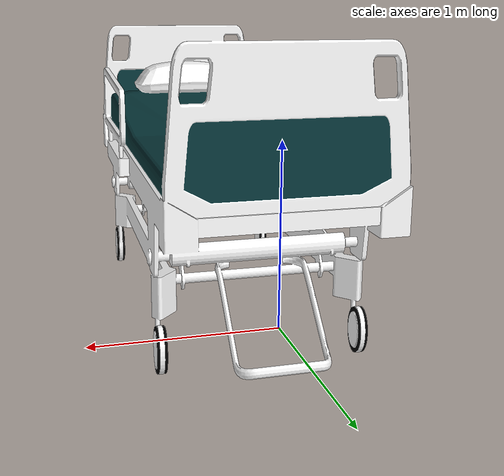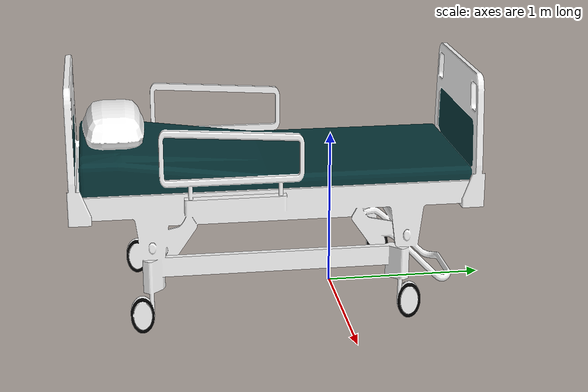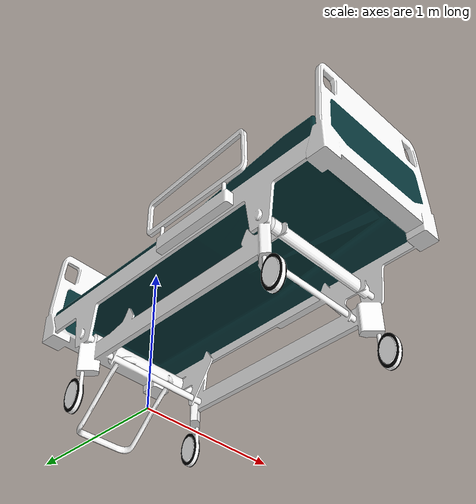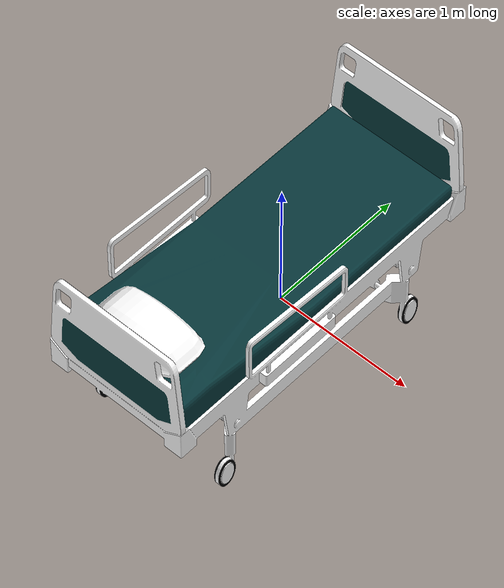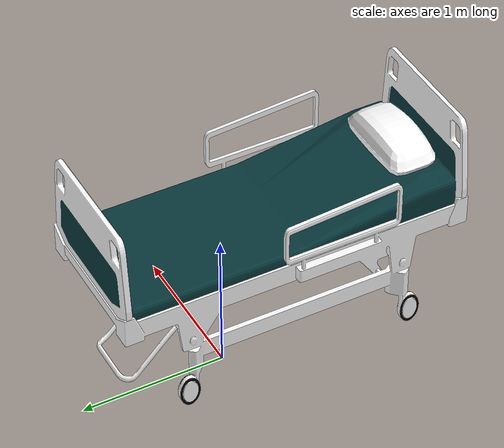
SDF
<?xml version='1.0'?>
<sdf version='1.6'>
  <model name='hospital_bed'>
    <pose frame=''>0.20 -0.42 0.01 0 0 3.1415</pose>
    <link name='body'>
      <pose frame=''>0 0 0 0 0 0</pose>
      <visual name='body_visual'>
        <pose frame=''>0 0 0 0 0 0</pose>
        <geometry>
          <mesh>
            <uri>model://hospital_bed/meshes/hospital_bed.dae</uri>
            <scale>1.1 1.3 2.1</scale>
          </mesh>
        </geometry>
        <meta>
          <layer>1</layer>
        </meta>
      </visual>
      <collision name='body_collision'>
        <geometry>
          <mesh>
            <uri>model://hospital_bed/meshes/hospital_bed.dae</uri>
            <scale>1.1 1.3 2.1</scale>
          </mesh>
        </geometry>
        <pose frame=''>0 0 0 0 0 0</pose>
      </collision>
    </link>
    <static>1</static>
  </model>
</sdf>
